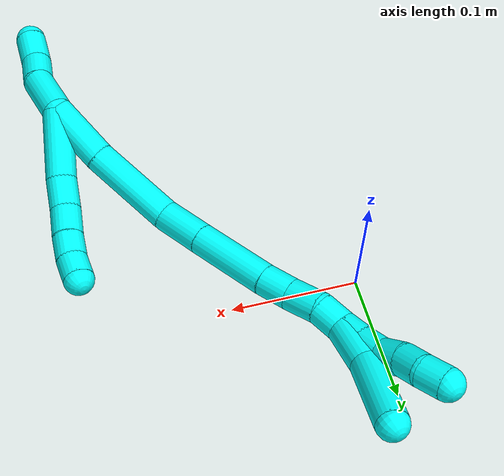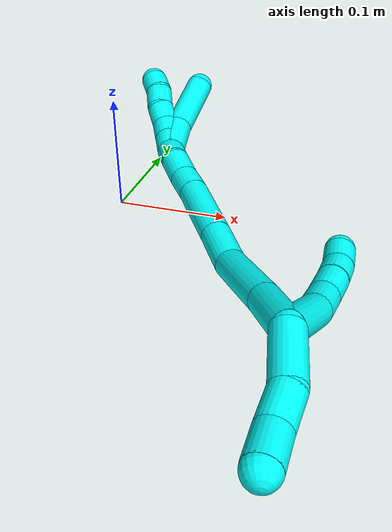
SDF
<sdf version="1.7">
 <world name="default">
  <model name="3">
   <static>0</static>
   <link name="3">
    <collision name="collision-cylinder-e_1_2_8">
     <pose>-0.015719 -0.009455 -0.021969 2.73516 -0.581431 -1.93537</pose>
     <geometry><cylinder><radius>0.0125</radius><length>0.057241</length></cylinder></geometry>
     <surface>
      <friction><ode><mu>1.16</mu><mu2>1.16</mu2><slip1>0</slip1><slip2>0</slip2></ode></friction>
      <contact><ode><kp>1e+06</kp><kd>1</kd><max_vel>0</max_vel><min_depth>0.001</min_depth></ode></contact>
     </surface>
    </collision>
    <visual name="visual-cylinder-e_1_2_8">
     <pose>-0.015719 -0.009455 -0.021969 2.73516 -0.581431 -1.93537</pose>
     <geometry><cylinder><radius>0.0125</radius><length>0.057241</length></cylinder></geometry>
     <material><ambient>0.003922 1 0.996078 1</ambient></material>
    </visual>
    <collision name="collision-cylinder-e_2_8_9">
     <pose>-0.036647 -0.022532 -0.055848 2.84639 -0.396313 -1.86681</pose>
     <geometry><cylinder><radius>0.0125</radius><length>0.026989</length></cylinder></geometry>
     <surface>
      <friction><ode><mu>1.16</mu><mu2>1.16</mu2><slip1>0</slip1><slip2>0</slip2></ode></friction>
      <contact><ode><kp>1e+06</kp><kd>1</kd><max_vel>0</max_vel><min_depth>0.001</min_depth></ode></contact>
     </surface>
    </collision>
    <visual name="visual-cylinder-e_2_8_9">
     <pose>-0.036647 -0.022532 -0.055848 2.84639 -0.396313 -1.86681</pose>
     <geometry><cylinder><radius>0.0125</radius><length>0.026989</length></cylinder></geometry>
     <material><ambient>0.003922 1 0.996078 1</ambient></material>
    </visual>
    <collision name="collision-cylinder-e_3_9_10">
     <pose>-0.044495 -0.03009 -0.079218 2.81079 -0.214465 -1.14553</pose>
     <geometry><cylinder><radius>0.0125</radius><length>0.024801</length></cylinder></geometry>
     <surface>
      <friction><ode><mu>1.16</mu><mu2>1.16</mu2><slip1>0</slip1><slip2>0</slip2></ode></friction>
      <contact><ode><kp>1e+06</kp><kd>1</kd><max_vel>0</max_vel><min_depth>0.001</min_depth></ode></contact>
     </surface>
    </collision>
    <visual name="visual-cylinder-e_3_9_10">
     <pose>-0.044495 -0.03009 -0.079218 2.81079 -0.214465 -1.14553</pose>
     <geometry><cylinder><radius>0.0125</radius><length>0.024801</length></cylinder></geometry>
     <material><ambient>0.003922 1 0.996078 1</ambient></material>
    </visual>
    <collision name="collision-cylinder-e_4_10_11">
     <pose>-0.049802 -0.036562 -0.100332 2.88464 -0.261161 -1.58723</pose>
     <geometry><cylinder><radius>0.0125</radius><length>0.020665</length></cylinder></geometry>
     <surface>
      <friction><ode><mu>1.16</mu><mu2>1.16</mu2><slip1>0</slip1><slip2>0</slip2></ode></friction>
      <contact><ode><kp>1e+06</kp><kd>1</kd><max_vel>0</max_vel><min_depth>0.001</min_depth></ode></contact>
     </surface>
    </collision>
    <visual name="visual-cylinder-e_4_10_11">
     <pose>-0.049802 -0.036562 -0.100332 2.88464 -0.261161 -1.58723</pose>
     <geometry><cylinder><radius>0.0125</radius><length>0.020665</length></cylinder></geometry>
     <material><ambient>0.003922 1 0.996078 1</ambient></material>
    </visual>
    <collision name="collision-cylinder-e_5_11_6">
     <pose>-0.053343 -0.040311 -0.120028 3.02142 -0.086107 -1.24293</pose>
     <geometry><cylinder><radius>0.0125</radius><length>0.020304</length></cylinder></geometry>
     <surface>
      <friction><ode><mu>1.16</mu><mu2>1.16</mu2><slip1>0</slip1><slip2>0</slip2></ode></friction>
      <contact><ode><kp>1e+06</kp><kd>1</kd><max_vel>0</max_vel><min_depth>0.001</min_depth></ode></contact>
     </surface>
    </collision>
    <visual name="visual-cylinder-e_5_11_6">
     <pose>-0.053343 -0.040311 -0.120028 3.02142 -0.086107 -1.24293</pose>
     <geometry><cylinder><radius>0.0125</radius><length>0.020304</length></cylinder></geometry>
     <material><ambient>0.003922 1 0.996078 1</ambient></material>
    </visual>
    <collision name="collision-cylinder-e_1_2_12">
     <pose>-0.000522 -0.000207 0.0223 0.009294 -0.023421 -0.000109</pose>
     <geometry><cylinder><radius>0.0125</radius><length>0.044614</length></cylinder></geometry>
     <surface>
      <friction><ode><mu>1.16</mu><mu2>1.16</mu2><slip1>0</slip1><slip2>0</slip2></ode></friction>
      <contact><ode><kp>1e+06</kp><kd>1</kd><max_vel>0</max_vel><min_depth>0.001</min_depth></ode></contact>
     </surface>
    </collision>
    <visual name="visual-cylinder-e_1_2_12">
     <pose>-0.000522 -0.000207 0.0223 0.009294 -0.023421 -0.000109</pose>
     <geometry><cylinder><radius>0.0125</radius><length>0.044614</length></cylinder></geometry>
     <material><ambient>0.003922 1 0.996078 1</ambient></material>
    </visual>
    <collision name="collision-cylinder-e_2_12_13">
     <pose>-0.00191 0.003454 0.057697 -0.287178 -0.063249 0.009148</pose>
     <geometry><cylinder><radius>0.0125</radius><length>0.027367</length></cylinder></geometry>
     <surface>
      <friction><ode><mu>1.16</mu><mu2>1.16</mu2><slip1>0</slip1><slip2>0</slip2></ode></friction>
      <contact><ode><kp>1e+06</kp><kd>1</kd><max_vel>0</max_vel><min_depth>0.001</min_depth></ode></contact>
     </surface>
    </collision>
    <visual name="visual-cylinder-e_2_12_13">
     <pose>-0.00191 0.003454 0.057697 -0.287178 -0.063249 0.009148</pose>
     <geometry><cylinder><radius>0.0125</radius><length>0.027367</length></cylinder></geometry>
     <material><ambient>0.003922 1 0.996078 1</ambient></material>
    </visual>
    <collision name="collision-cylinder-e_3_13_5">
     <pose>-0.000364 0.010078 0.084316 -0.201069 0.17292 -0.017486</pose>
     <geometry><cylinder><radius>0.0125</radius><length>0.028018</length></cylinder></geometry>
     <surface>
      <friction><ode><mu>1.16</mu><mu2>1.16</mu2><slip1>0</slip1><slip2>0</slip2></ode></friction>
      <contact><ode><kp>1e+06</kp><kd>1</kd><max_vel>0</max_vel><min_depth>0.001</min_depth></ode></contact>
     </surface>
    </collision>
    <visual name="visual-cylinder-e_3_13_5">
     <pose>-0.000364 0.010078 0.084316 -0.201069 0.17292 -0.017486</pose>
     <geometry><cylinder><radius>0.0125</radius><length>0.028018</length></cylinder></geometry>
     <material><ambient>0.003922 1 0.996078 1</ambient></material>
    </visual>
    <collision name="collision-cylinder-e_1_2_14">
     <pose>-0.010964 0.007816 -0.022084 -2.80143 -0.437741 1.82659</pose>
     <geometry><cylinder><radius>0.0125</radius><length>0.051731</length></cylinder></geometry>
     <surface>
      <friction><ode><mu>1.16</mu><mu2>1.16</mu2><slip1>0</slip1><slip2>0</slip2></ode></friction>
      <contact><ode><kp>1e+06</kp><kd>1</kd><max_vel>0</max_vel><min_depth>0.001</min_depth></ode></contact>
     </surface>
    </collision>
    <visual name="visual-cylinder-e_1_2_14">
     <pose>-0.010964 0.007816 -0.022084 -2.80143 -0.437741 1.82659</pose>
     <geometry><cylinder><radius>0.0125</radius><length>0.051731</length></cylinder></geometry>
     <material><ambient>0.003922 1 0.996078 1</ambient></material>
    </visual>
    <collision name="collision-cylinder-e_2_14_15">
     <pose>-0.035288 0.02983 -0.075168 -2.71212 -0.373444 1.42766</pose>
     <geometry><cylinder><radius>0.0125</radius><length>0.073238</length></cylinder></geometry>
     <surface>
      <friction><ode><mu>1.16</mu><mu2>1.16</mu2><slip1>0</slip1><slip2>0</slip2></ode></friction>
      <contact><ode><kp>1e+06</kp><kd>1</kd><max_vel>0</max_vel><min_depth>0.001</min_depth></ode></contact>
     </surface>
    </collision>
    <visual name="visual-cylinder-e_2_14_15">
     <pose>-0.035288 0.02983 -0.075168 -2.71212 -0.373444 1.42766</pose>
     <geometry><cylinder><radius>0.0125</radius><length>0.073238</length></cylinder></geometry>
     <material><ambient>0.003922 1 0.996078 1</ambient></material>
    </visual>
    <collision name="collision-cylinder-e_3_15_16">
     <pose>-0.049503 0.051251 -0.124146 -2.75953 -0.04413 0.227243</pose>
     <geometry><cylinder><radius>0.0125</radius><length>0.038791</length></cylinder></geometry>
     <surface>
      <friction><ode><mu>1.16</mu><mu2>1.16</mu2><slip1>0</slip1><slip2>0</slip2></ode></friction>
      <contact><ode><kp>1e+06</kp><kd>1</kd><max_vel>0</max_vel><min_depth>0.001</min_depth></ode></contact>
     </surface>
    </collision>
    <visual name="visual-cylinder-e_3_15_16">
     <pose>-0.049503 0.051251 -0.124146 -2.75953 -0.04413 0.227243</pose>
     <geometry><cylinder><radius>0.0125</radius><length>0.038791</length></cylinder></geometry>
     <material><ambient>0.003922 1 0.996078 1</ambient></material>
    </visual>
    <collision name="collision-cylinder-e_4_16_17">
     <pose>-0.051897 0.070769 -0.171438 -2.74446 -0.048341 0.239141</pose>
     <geometry><cylinder><radius>0.0125</radius><length>0.063647</length></cylinder></geometry>
     <surface>
      <friction><ode><mu>1.16</mu><mu2>1.16</mu2><slip1>0</slip1><slip2>0</slip2></ode></friction>
      <contact><ode><kp>1e+06</kp><kd>1</kd><max_vel>0</max_vel><min_depth>0.001</min_depth></ode></contact>
     </surface>
    </collision>
    <visual name="visual-cylinder-e_4_16_17">
     <pose>-0.051897 0.070769 -0.171438 -2.74446 -0.048341 0.239141</pose>
     <geometry><cylinder><radius>0.0125</radius><length>0.063647</length></cylinder></geometry>
     <material><ambient>0.003922 1 0.996078 1</ambient></material>
    </visual>
    <collision name="collision-cylinder-e_5_17_18">
     <pose>-0.053815 0.088468 -0.211569 -2.67832 -0.031482 0.133286</pose>
     <geometry><cylinder><radius>0.0125</radius><length>0.024199</length></cylinder></geometry>
     <surface>
      <friction><ode><mu>1.16</mu><mu2>1.16</mu2><slip1>0</slip1><slip2>0</slip2></ode></friction>
      <contact><ode><kp>1e+06</kp><kd>1</kd><max_vel>0</max_vel><min_depth>0.001</min_depth></ode></contact>
     </surface>
    </collision>
    <visual name="visual-cylinder-e_5_17_18">
     <pose>-0.053815 0.088468 -0.211569 -2.67832 -0.031482 0.133286</pose>
     <geometry><cylinder><radius>0.0125</radius><length>0.024199</length></cylinder></geometry>
     <material><ambient>0.003922 1 0.996078 1</ambient></material>
    </visual>
    <collision name="collision-cylinder-e_6_18_19">
     <pose>-0.05301 0.099464 -0.234265 -2.70161 0.090135 -0.398022</pose>
     <geometry><cylinder><radius>0.0125</radius><length>0.026361</length></cylinder></geometry>
     <surface>
      <friction><ode><mu>1.16</mu><mu2>1.16</mu2><slip1>0</slip1><slip2>0</slip2></ode></friction>
      <contact><ode><kp>1e+06</kp><kd>1</kd><max_vel>0</max_vel><min_depth>0.001</min_depth></ode></contact>
     </surface>
    </collision>
    <visual name="visual-cylinder-e_6_18_19">
     <pose>-0.05301 0.099464 -0.234265 -2.70161 0.090135 -0.398022</pose>
     <geometry><cylinder><radius>0.0125</radius><length>0.026361</length></cylinder></geometry>
     <material><ambient>0.003922 1 0.996078 1</ambient></material>
    </visual>
    <collision name="collision-cylinder-e_7_19_1">
     <pose>-0.053797 0.108555 -0.256399 -2.81276 -0.180106 0.996822</pose>
     <geometry><cylinder><radius>0.0125</radius><length>0.022032</length></cylinder></geometry>
     <surface>
      <friction><ode><mu>1.16</mu><mu2>1.16</mu2><slip1>0</slip1><slip2>0</slip2></ode></friction>
      <contact><ode><kp>1e+06</kp><kd>1</kd><max_vel>0</max_vel><min_depth>0.001</min_depth></ode></contact>
     </surface>
    </collision>
    <visual name="visual-cylinder-e_7_19_1">
     <pose>-0.053797 0.108555 -0.256399 -2.81276 -0.180106 0.996822</pose>
     <geometry><cylinder><radius>0.0125</radius><length>0.022032</length></cylinder></geometry>
     <material><ambient>0.003922 1 0.996078 1</ambient></material>
    </visual>
    <collision name="collision-cylinder-e_1_1_20">
     <pose>-0.055025 0.114463 -0.276333 -2.89769 0.074597 -0.59111</pose>
     <geometry><cylinder><radius>0.0125</radius><length>0.02</length></cylinder></geometry>
     <surface>
      <friction><ode><mu>1.16</mu><mu2>1.16</mu2><slip1>0</slip1><slip2>0</slip2></ode></friction>
      <contact><ode><kp>1e+06</kp><kd>1</kd><max_vel>0</max_vel><min_depth>0.001</min_depth></ode></contact>
     </surface>
    </collision>
    <visual name="visual-cylinder-e_1_1_20">
     <pose>-0.055025 0.114463 -0.276333 -2.89769 0.074597 -0.59111</pose>
     <geometry><cylinder><radius>0.0125</radius><length>0.02</length></cylinder></geometry>
     <material><ambient>0.003922 1 0.996078 1</ambient></material>
    </visual>
    <collision name="collision-cylinder-e_2_20_21">
     <pose>-0.052454 0.119343 -0.295527 -2.88749 0.183549 -1.24868</pose>
     <geometry><cylinder><radius>0.0125</radius><length>0.02</length></cylinder></geometry>
     <surface>
      <friction><ode><mu>1.16</mu><mu2>1.16</mu2><slip1>0</slip1><slip2>0</slip2></ode></friction>
      <contact><ode><kp>1e+06</kp><kd>1</kd><max_vel>0</max_vel><min_depth>0.001</min_depth></ode></contact>
     </surface>
    </collision>
    <visual name="visual-cylinder-e_2_20_21">
     <pose>-0.052454 0.119343 -0.295527 -2.88749 0.183549 -1.24868</pose>
     <geometry><cylinder><radius>0.0125</radius><length>0.02</length></cylinder></geometry>
     <material><ambient>0.003922 1 0.996078 1</ambient></material>
    </visual>
    <collision name="collision-cylinder-e_3_21_22">
     <pose>-0.04606 0.125224 -0.313259 -2.74824 0.474491 -1.76312</pose>
     <geometry><cylinder><radius>0.0125</radius><length>0.02</length></cylinder></geometry>
     <surface>
      <friction><ode><mu>1.16</mu><mu2>1.16</mu2><slip1>0</slip1><slip2>0</slip2></ode></friction>
      <contact><ode><kp>1e+06</kp><kd>1</kd><max_vel>0</max_vel><min_depth>0.001</min_depth></ode></contact>
     </surface>
    </collision>
    <visual name="visual-cylinder-e_3_21_22">
     <pose>-0.04606 0.125224 -0.313259 -2.74824 0.474491 -1.76312</pose>
     <geometry><cylinder><radius>0.0125</radius><length>0.02</length></cylinder></geometry>
     <material><ambient>0.003922 1 0.996078 1</ambient></material>
    </visual>
    <collision name="collision-cylinder-e_4_22_23">
     <pose>-0.038103 0.130269 -0.33074 -2.96685 0.345674 -2.21152</pose>
     <geometry><cylinder><radius>0.0125</radius><length>0.02</length></cylinder></geometry>
     <surface>
      <friction><ode><mu>1.16</mu><mu2>1.16</mu2><slip1>0</slip1><slip2>0</slip2></ode></friction>
      <contact><ode><kp>1e+06</kp><kd>1</kd><max_vel>0</max_vel><min_depth>0.001</min_depth></ode></contact>
     </surface>
    </collision>
    <visual name="visual-cylinder-e_4_22_23">
     <pose>-0.038103 0.130269 -0.33074 -2.96685 0.345674 -2.21152</pose>
     <geometry><cylinder><radius>0.0125</radius><length>0.02</length></cylinder></geometry>
     <material><ambient>0.003922 1 0.996078 1</ambient></material>
    </visual>
    <collision name="collision-cylinder-e_5_23_4">
     <pose>-0.03336 0.135486 -0.349243 -2.77173 0.135866 -0.697656</pose>
     <geometry><cylinder><radius>0.0125</radius><length>0.02</length></cylinder></geometry>
     <surface>
      <friction><ode><mu>1.16</mu><mu2>1.16</mu2><slip1>0</slip1><slip2>0</slip2></ode></friction>
      <contact><ode><kp>1e+06</kp><kd>1</kd><max_vel>0</max_vel><min_depth>0.001</min_depth></ode></contact>
     </surface>
    </collision>
    <visual name="visual-cylinder-e_5_23_4">
     <pose>-0.03336 0.135486 -0.349243 -2.77173 0.135866 -0.697656</pose>
     <geometry><cylinder><radius>0.0125</radius><length>0.02</length></cylinder></geometry>
     <material><ambient>0.003922 1 0.996078 1</ambient></material>
    </visual>
    <collision name="collision-cylinder-e_1_1_24">
     <pose>-0.054538 0.110564 -0.285686 3.06343 0.064479 1.37938</pose>
     <geometry><cylinder><radius>0.0125</radius><length>0.038256</length></cylinder></geometry>
     <surface>
      <friction><ode><mu>1.16</mu><mu2>1.16</mu2><slip1>0</slip1><slip2>0</slip2></ode></friction>
      <contact><ode><kp>1e+06</kp><kd>1</kd><max_vel>0</max_vel><min_depth>0.001</min_depth></ode></contact>
     </surface>
    </collision>
    <visual name="visual-cylinder-e_1_1_24">
     <pose>-0.054538 0.110564 -0.285686 3.06343 0.064479 1.37938</pose>
     <geometry><cylinder><radius>0.0125</radius><length>0.038256</length></cylinder></geometry>
     <material><ambient>0.003922 1 0.996078 1</ambient></material>
    </visual>
    <collision name="collision-cylinder-e_2_24_3">
     <pose>-0.046888 0.101101 -0.333842 2.87439 0.209405 1.32719</pose>
     <geometry><cylinder><radius>0.0125</radius><length>0.061744</length></cylinder></geometry>
     <surface>
      <friction><ode><mu>1.16</mu><mu2>1.16</mu2><slip1>0</slip1><slip2>0</slip2></ode></friction>
      <contact><ode><kp>1e+06</kp><kd>1</kd><max_vel>0</max_vel><min_depth>0.001</min_depth></ode></contact>
     </surface>
    </collision>
    <visual name="visual-cylinder-e_2_24_3">
     <pose>-0.046888 0.101101 -0.333842 2.87439 0.209405 1.32719</pose>
     <geometry><cylinder><radius>0.0125</radius><length>0.061744</length></cylinder></geometry>
     <material><ambient>0.003922 1 0.996078 1</ambient></material>
    </visual>
    <collision name="collision-sphere-3">
     <pose>-0.04047 0.093127 -0.362968 0 -0 0</pose>
     <geometry><sphere><radius>0.0125</radius></sphere></geometry>
     <surface>
      <friction><ode><mu>1.16</mu><mu2>1.16</mu2><slip1>0</slip1><slip2>0</slip2></ode></friction>
      <contact><ode><kp>1e+06</kp><kd>1</kd><max_vel>0</max_vel><min_depth>0.001</min_depth></ode></contact>
     </surface>
    </collision>
    <visual name="visual-sphere-3">
     <pose>-0.04047 0.093127 -0.362968 0 -0 0</pose>
     <geometry><sphere><radius>0.0125</radius></sphere></geometry>
     <material><ambient>0.003922 1 0.996078 1</ambient></material>
    </visual>
    <collision name="collision-sphere-24">
     <pose>-0.053305 0.109074 -0.304717 0 -0 0</pose>
     <geometry><sphere><radius>0.0125</radius></sphere></geometry>
     <surface>
      <friction><ode><mu>1.16</mu><mu2>1.16</mu2><slip1>0</slip1><slip2>0</slip2></ode></friction>
      <contact><ode><kp>1e+06</kp><kd>1</kd><max_vel>0</max_vel><min_depth>0.001</min_depth></ode></contact>
     </surface>
    </collision>
    <visual name="visual-sphere-24">
     <pose>-0.053305 0.109074 -0.304717 0 -0 0</pose>
     <geometry><sphere><radius>0.0125</radius></sphere></geometry>
     <material><ambient>0.003922 1 0.996078 1</ambient></material>
    </visual>
    <collision name="collision-sphere-4">
     <pose>-0.032006 0.139068 -0.358481 0 -0 0</pose>
     <geometry><sphere><radius>0.0125</radius></sphere></geometry>
     <surface>
      <friction><ode><mu>1.16</mu><mu2>1.16</mu2><slip1>0</slip1><slip2>0</slip2></ode></friction>
      <contact><ode><kp>1e+06</kp><kd>1</kd><max_vel>0</max_vel><min_depth>0.001</min_depth></ode></contact>
     </surface>
    </collision>
    <visual name="visual-sphere-4">
     <pose>-0.032006 0.139068 -0.358481 0 -0 0</pose>
     <geometry><sphere><radius>0.0125</radius></sphere></geometry>
     <material><ambient>0.003922 1 0.996078 1</ambient></material>
    </visual>
    <collision name="collision-sphere-23">
     <pose>-0.034715 0.131904 -0.340005 0 -0 0</pose>
     <geometry><sphere><radius>0.0125</radius></sphere></geometry>
     <surface>
      <friction><ode><mu>1.16</mu><mu2>1.16</mu2><slip1>0</slip1><slip2>0</slip2></ode></friction>
      <contact><ode><kp>1e+06</kp><kd>1</kd><max_vel>0</max_vel><min_depth>0.001</min_depth></ode></contact>
     </surface>
    </collision>
    <visual name="visual-sphere-23">
     <pose>-0.034715 0.131904 -0.340005 0 -0 0</pose>
     <geometry><sphere><radius>0.0125</radius></sphere></geometry>
     <material><ambient>0.003922 1 0.996078 1</ambient></material>
    </visual>
    <collision name="collision-sphere-22">
     <pose>-0.041491 0.128633 -0.321475 0 -0 0</pose>
     <geometry><sphere><radius>0.0125</radius></sphere></geometry>
     <surface>
      <friction><ode><mu>1.16</mu><mu2>1.16</mu2><slip1>0</slip1><slip2>0</slip2></ode></friction>
      <contact><ode><kp>1e+06</kp><kd>1</kd><max_vel>0</max_vel><min_depth>0.001</min_depth></ode></contact>
     </surface>
    </collision>
    <visual name="visual-sphere-22">
     <pose>-0.041491 0.128633 -0.321475 0 -0 0</pose>
     <geometry><sphere><radius>0.0125</radius></sphere></geometry>
     <material><ambient>0.003922 1 0.996078 1</ambient></material>
    </visual>
    <collision name="collision-sphere-21">
     <pose>-0.050629 0.121814 -0.305043 0 -0 0</pose>
     <geometry><sphere><radius>0.0125</radius></sphere></geometry>
     <surface>
      <friction><ode><mu>1.16</mu><mu2>1.16</mu2><slip1>0</slip1><slip2>0</slip2></ode></friction>
      <contact><ode><kp>1e+06</kp><kd>1</kd><max_vel>0</max_vel><min_depth>0.001</min_depth></ode></contact>
     </surface>
    </collision>
    <visual name="visual-sphere-21">
     <pose>-0.050629 0.121814 -0.305043 0 -0 0</pose>
     <geometry><sphere><radius>0.0125</radius></sphere></geometry>
     <material><ambient>0.003922 1 0.996078 1</ambient></material>
    </visual>
    <collision name="collision-sphere-20">
     <pose>-0.05428 0.116871 -0.28601 0 -0 0</pose>
     <geometry><sphere><radius>0.0125</radius></sphere></geometry>
     <surface>
      <friction><ode><mu>1.16</mu><mu2>1.16</mu2><slip1>0</slip1><slip2>0</slip2></ode></friction>
      <contact><ode><kp>1e+06</kp><kd>1</kd><max_vel>0</max_vel><min_depth>0.001</min_depth></ode></contact>
     </surface>
    </collision>
    <visual name="visual-sphere-20">
     <pose>-0.05428 0.116871 -0.28601 0 -0 0</pose>
     <geometry><sphere><radius>0.0125</radius></sphere></geometry>
     <material><ambient>0.003922 1 0.996078 1</ambient></material>
    </visual>
    <collision name="collision-sphere-6">
     <pose>-0.054216 -0.041524 -0.130069 0 -0 0</pose>
     <geometry><sphere><radius>0.0125</radius></sphere></geometry>
     <surface>
      <friction><ode><mu>1.16</mu><mu2>1.16</mu2><slip1>0</slip1><slip2>0</slip2></ode></friction>
      <contact><ode><kp>1e+06</kp><kd>1</kd><max_vel>0</max_vel><min_depth>0.001</min_depth></ode></contact>
     </surface>
    </collision>
    <visual name="visual-sphere-6">
     <pose>-0.054216 -0.041524 -0.130069 0 -0 0</pose>
     <geometry><sphere><radius>0.0125</radius></sphere></geometry>
     <material><ambient>0.003922 1 0.996078 1</ambient></material>
    </visual>
    <collision name="collision-sphere-11">
     <pose>-0.05247 -0.039099 -0.109986 0 -0 0</pose>
     <geometry><sphere><radius>0.0125</radius></sphere></geometry>
     <surface>
      <friction><ode><mu>1.16</mu><mu2>1.16</mu2><slip1>0</slip1><slip2>0</slip2></ode></friction>
      <contact><ode><kp>1e+06</kp><kd>1</kd><max_vel>0</max_vel><min_depth>0.001</min_depth></ode></contact>
     </surface>
    </collision>
    <visual name="visual-sphere-11">
     <pose>-0.05247 -0.039099 -0.109986 0 -0 0</pose>
     <geometry><sphere><radius>0.0125</radius></sphere></geometry>
     <material><ambient>0.003922 1 0.996078 1</ambient></material>
    </visual>
    <collision name="collision-sphere-10">
     <pose>-0.047134 -0.034025 -0.090677 0 -0 0</pose>
     <geometry><sphere><radius>0.0125</radius></sphere></geometry>
     <surface>
      <friction><ode><mu>1.16</mu><mu2>1.16</mu2><slip1>0</slip1><slip2>0</slip2></ode></friction>
      <contact><ode><kp>1e+06</kp><kd>1</kd><max_vel>0</max_vel><min_depth>0.001</min_depth></ode></contact>
     </surface>
    </collision>
    <visual name="visual-sphere-10">
     <pose>-0.047134 -0.034025 -0.090677 0 -0 0</pose>
     <geometry><sphere><radius>0.0125</radius></sphere></geometry>
     <material><ambient>0.003922 1 0.996078 1</ambient></material>
    </visual>
    <collision name="collision-sphere-9">
     <pose>-0.041856 -0.026154 -0.067758 0 -0 0</pose>
     <geometry><sphere><radius>0.0125</radius></sphere></geometry>
     <surface>
      <friction><ode><mu>1.16</mu><mu2>1.16</mu2><slip1>0</slip1><slip2>0</slip2></ode></friction>
      <contact><ode><kp>1e+06</kp><kd>1</kd><max_vel>0</max_vel><min_depth>0.001</min_depth></ode></contact>
     </surface>
    </collision>
    <visual name="visual-sphere-9">
     <pose>-0.041856 -0.026154 -0.067758 0 -0 0</pose>
     <geometry><sphere><radius>0.0125</radius></sphere></geometry>
     <material><ambient>0.003922 1 0.996078 1</ambient></material>
    </visual>
    <collision name="collision-sphere-2">
     <geometry><sphere><radius>0.0125</radius></sphere></geometry>
     <surface>
      <friction><ode><mu>1.16</mu><mu2>1.16</mu2><slip1>0</slip1><slip2>0</slip2></ode></friction>
      <contact><ode><kp>1e+06</kp><kd>1</kd><max_vel>0</max_vel><min_depth>0.001</min_depth></ode></contact>
     </surface>
    </collision>
    <visual name="visual-sphere-2">
     <geometry><sphere><radius>0.0125</radius></sphere></geometry>
     <material><ambient>0.003922 1 0.996078 1</ambient></material>
    </visual>
    <collision name="collision-sphere-19">
     <pose>-0.051823 0.105055 -0.246142 0 -0 0</pose>
     <geometry><sphere><radius>0.0125</radius></sphere></geometry>
     <surface>
      <friction><ode><mu>1.16</mu><mu2>1.16</mu2><slip1>0</slip1><slip2>0</slip2></ode></friction>
      <contact><ode><kp>1e+06</kp><kd>1</kd><max_vel>0</max_vel><min_depth>0.001</min_depth></ode></contact>
     </surface>
    </collision>
    <visual name="visual-sphere-19">
     <pose>-0.051823 0.105055 -0.246142 0 -0 0</pose>
     <geometry><sphere><radius>0.0125</radius></sphere></geometry>
     <material><ambient>0.003922 1 0.996078 1</ambient></material>
    </visual>
    <collision name="collision-sphere-8">
     <pose>-0.031438 -0.018911 -0.043938 0 -0 0</pose>
     <geometry><sphere><radius>0.0125</radius></sphere></geometry>
     <surface>
      <friction><ode><mu>1.16</mu><mu2>1.16</mu2><slip1>0</slip1><slip2>0</slip2></ode></friction>
      <contact><ode><kp>1e+06</kp><kd>1</kd><max_vel>0</max_vel><min_depth>0.001</min_depth></ode></contact>
     </surface>
    </collision>
    <visual name="visual-sphere-8">
     <pose>-0.031438 -0.018911 -0.043938 0 -0 0</pose>
     <geometry><sphere><radius>0.0125</radius></sphere></geometry>
     <material><ambient>0.003922 1 0.996078 1</ambient></material>
    </visual>
    <collision name="collision-sphere-12">
     <pose>-0.001045 -0.000415 0.0446 0 -0 0</pose>
     <geometry><sphere><radius>0.0125</radius></sphere></geometry>
     <surface>
      <friction><ode><mu>1.16</mu><mu2>1.16</mu2><slip1>0</slip1><slip2>0</slip2></ode></friction>
      <contact><ode><kp>1e+06</kp><kd>1</kd><max_vel>0</max_vel><min_depth>0.001</min_depth></ode></contact>
     </surface>
    </collision>
    <visual name="visual-sphere-12">
     <pose>-0.001045 -0.000415 0.0446 0 -0 0</pose>
     <geometry><sphere><radius>0.0125</radius></sphere></geometry>
     <material><ambient>0.003922 1 0.996078 1</ambient></material>
    </visual>
    <collision name="collision-sphere-13">
     <pose>-0.002775 0.007322 0.070794 0 -0 0</pose>
     <geometry><sphere><radius>0.0125</radius></sphere></geometry>
     <surface>
      <friction><ode><mu>1.16</mu><mu2>1.16</mu2><slip1>0</slip1><slip2>0</slip2></ode></friction>
      <contact><ode><kp>1e+06</kp><kd>1</kd><max_vel>0</max_vel><min_depth>0.001</min_depth></ode></contact>
     </surface>
    </collision>
    <visual name="visual-sphere-13">
     <pose>-0.002775 0.007322 0.070794 0 -0 0</pose>
     <geometry><sphere><radius>0.0125</radius></sphere></geometry>
     <material><ambient>0.003922 1 0.996078 1</ambient></material>
    </visual>
    <collision name="collision-sphere-5">
     <pose>0.002046 0.012834 0.097839 0 -0 0</pose>
     <geometry><sphere><radius>0.0125</radius></sphere></geometry>
     <surface>
      <friction><ode><mu>1.16</mu><mu2>1.16</mu2><slip1>0</slip1><slip2>0</slip2></ode></friction>
      <contact><ode><kp>1e+06</kp><kd>1</kd><max_vel>0</max_vel><min_depth>0.001</min_depth></ode></contact>
     </surface>
    </collision>
    <visual name="visual-sphere-5">
     <pose>0.002046 0.012834 0.097839 0 -0 0</pose>
     <geometry><sphere><radius>0.0125</radius></sphere></geometry>
     <material><ambient>0.003922 1 0.996078 1</ambient></material>
    </visual>
    <collision name="collision-sphere-14">
     <pose>-0.021929 0.015632 -0.044169 0 -0 0</pose>
     <geometry><sphere><radius>0.0125</radius></sphere></geometry>
     <surface>
      <friction><ode><mu>1.16</mu><mu2>1.16</mu2><slip1>0</slip1><slip2>0</slip2></ode></friction>
      <contact><ode><kp>1e+06</kp><kd>1</kd><max_vel>0</max_vel><min_depth>0.001</min_depth></ode></contact>
     </surface>
    </collision>
    <visual name="visual-sphere-14">
     <pose>-0.021929 0.015632 -0.044169 0 -0 0</pose>
     <geometry><sphere><radius>0.0125</radius></sphere></geometry>
     <material><ambient>0.003922 1 0.996078 1</ambient></material>
    </visual>
    <collision name="collision-sphere-15">
     <pose>-0.048648 0.044027 -0.106167 0 -0 0</pose>
     <geometry><sphere><radius>0.0125</radius></sphere></geometry>
     <surface>
      <friction><ode><mu>1.16</mu><mu2>1.16</mu2><slip1>0</slip1><slip2>0</slip2></ode></friction>
      <contact><ode><kp>1e+06</kp><kd>1</kd><max_vel>0</max_vel><min_depth>0.001</min_depth></ode></contact>
     </surface>
    </collision>
    <visual name="visual-sphere-15">
     <pose>-0.048648 0.044027 -0.106167 0 -0 0</pose>
     <geometry><sphere><radius>0.0125</radius></sphere></geometry>
     <material><ambient>0.003922 1 0.996078 1</ambient></material>
    </visual>
    <collision name="collision-sphere-16">
     <pose>-0.050359 0.058475 -0.142125 0 -0 0</pose>
     <geometry><sphere><radius>0.0125</radius></sphere></geometry>
     <surface>
      <friction><ode><mu>1.16</mu><mu2>1.16</mu2><slip1>0</slip1><slip2>0</slip2></ode></friction>
      <contact><ode><kp>1e+06</kp><kd>1</kd><max_vel>0</max_vel><min_depth>0.001</min_depth></ode></contact>
     </surface>
    </collision>
    <visual name="visual-sphere-16">
     <pose>-0.050359 0.058475 -0.142125 0 -0 0</pose>
     <geometry><sphere><radius>0.0125</radius></sphere></geometry>
     <material><ambient>0.003922 1 0.996078 1</ambient></material>
    </visual>
    <collision name="collision-sphere-17">
     <pose>-0.053435 0.083064 -0.20075 0 -0 0</pose>
     <geometry><sphere><radius>0.0125</radius></sphere></geometry>
     <surface>
      <friction><ode><mu>1.16</mu><mu2>1.16</mu2><slip1>0</slip1><slip2>0</slip2></ode></friction>
      <contact><ode><kp>1e+06</kp><kd>1</kd><max_vel>0</max_vel><min_depth>0.001</min_depth></ode></contact>
     </surface>
    </collision>
    <visual name="visual-sphere-17">
     <pose>-0.053435 0.083064 -0.20075 0 -0 0</pose>
     <geometry><sphere><radius>0.0125</radius></sphere></geometry>
     <material><ambient>0.003922 1 0.996078 1</ambient></material>
    </visual>
    <collision name="collision-sphere-18">
     <pose>-0.054196 0.093872 -0.222388 0 -0 0</pose>
     <geometry><sphere><radius>0.0125</radius></sphere></geometry>
     <surface>
      <friction><ode><mu>1.16</mu><mu2>1.16</mu2><slip1>0</slip1><slip2>0</slip2></ode></friction>
      <contact><ode><kp>1e+06</kp><kd>1</kd><max_vel>0</max_vel><min_depth>0.001</min_depth></ode></contact>
     </surface>
    </collision>
    <visual name="visual-sphere-18">
     <pose>-0.054196 0.093872 -0.222388 0 -0 0</pose>
     <geometry><sphere><radius>0.0125</radius></sphere></geometry>
     <material><ambient>0.003922 1 0.996078 1</ambient></material>
    </visual>
    <collision name="collision-sphere-1">
     <pose>-0.05577 0.112055 -0.266656 0 -0 0</pose>
     <geometry><sphere><radius>0.0125</radius></sphere></geometry>
     <surface>
      <friction><ode><mu>1.16</mu><mu2>1.16</mu2><slip1>0</slip1><slip2>0</slip2></ode></friction>
      <contact><ode><kp>1e+06</kp><kd>1</kd><max_vel>0</max_vel><min_depth>0.001</min_depth></ode></contact>
     </surface>
    </collision>
    <visual name="visual-sphere-1">
     <pose>-0.05577 0.112055 -0.266656 0 -0 0</pose>
     <geometry><sphere><radius>0.0125</radius></sphere></geometry>
     <material><ambient>0.003922 1 0.996078 1</ambient></material>
    </visual>
    <inertial>
     <pose>-0.035909 0.048136 -0.141956 0 -0 0</pose>
     <mass>0.75</mass>
     <inertia>
      <ixx>0.000102</ixx>
      <ixy>0</ixy>
      <ixz>0</ixz>
      <iyy>5.2e-05</iyy>
      <iyz>0</iyz>
      <izz>-3.4e-05</izz>
     </inertia>
    </inertial>
   </link>
   <pose>0.197189 -0.190541 0.044819 -3.0356 -1.39791 -1.46296</pose>
  </model>
 </world>
</sdf>
